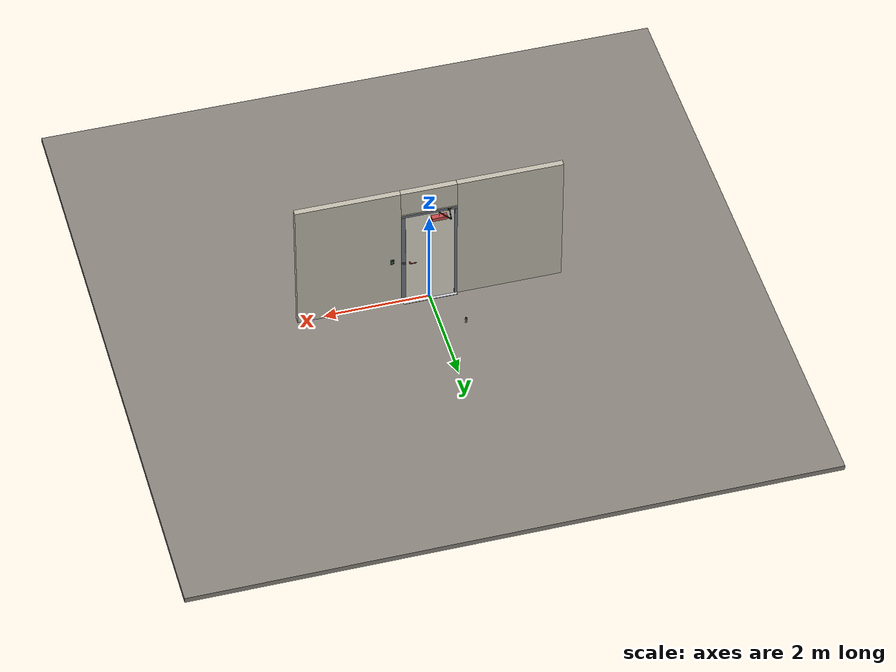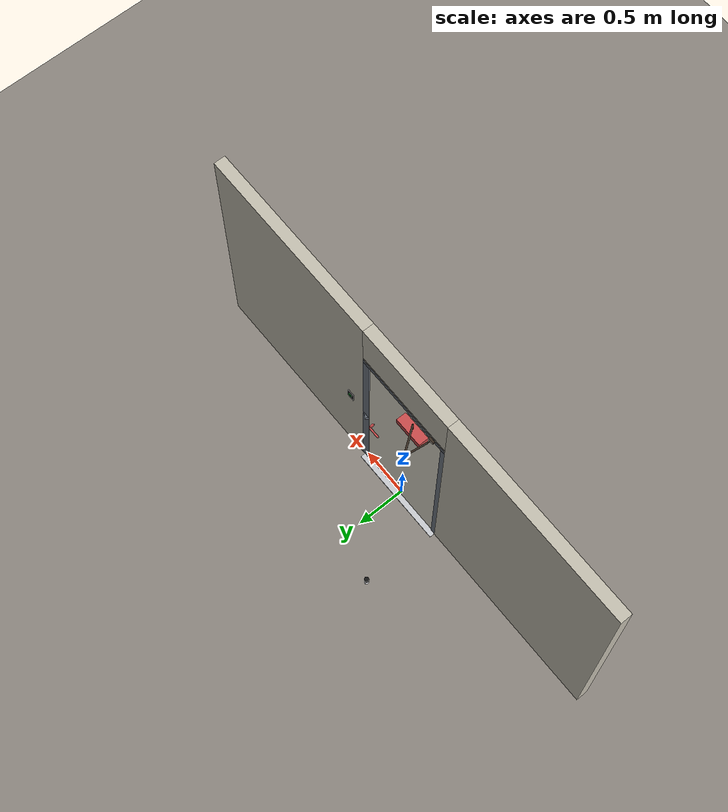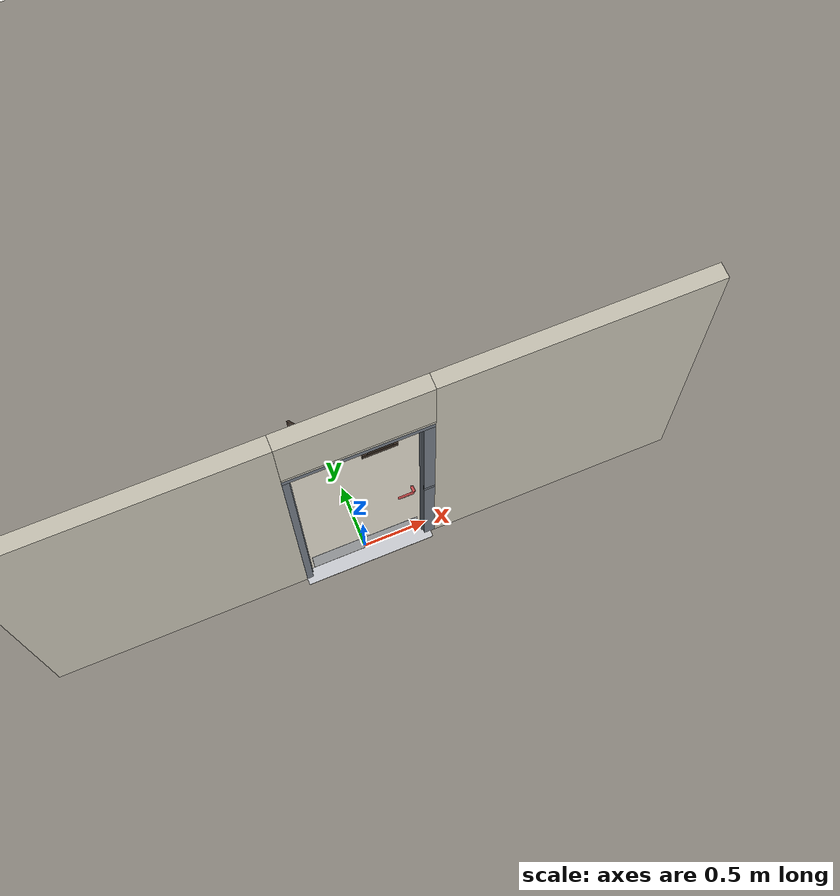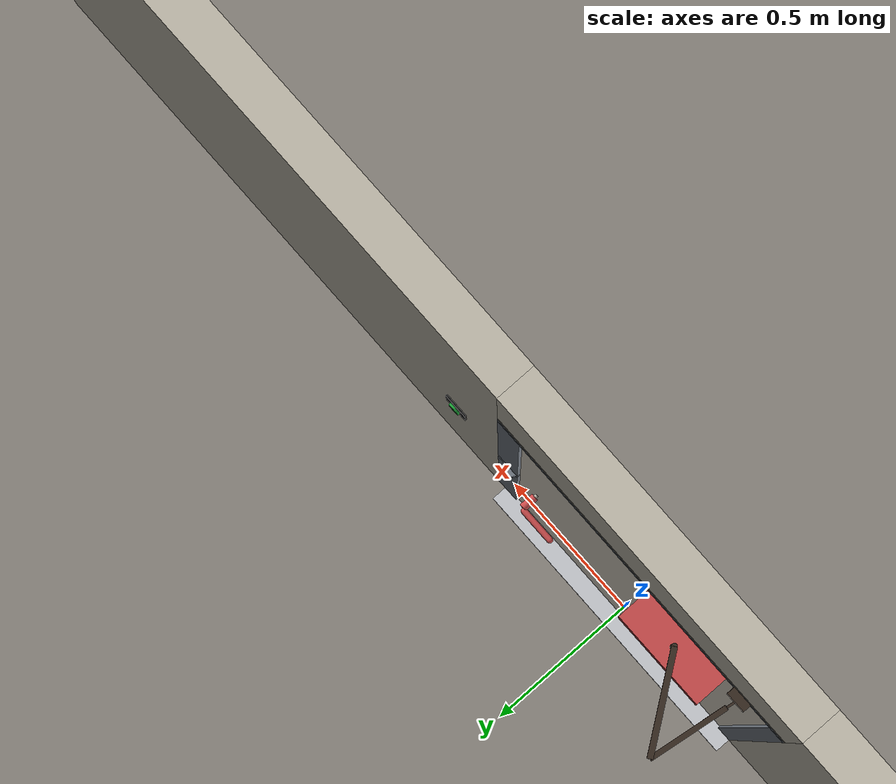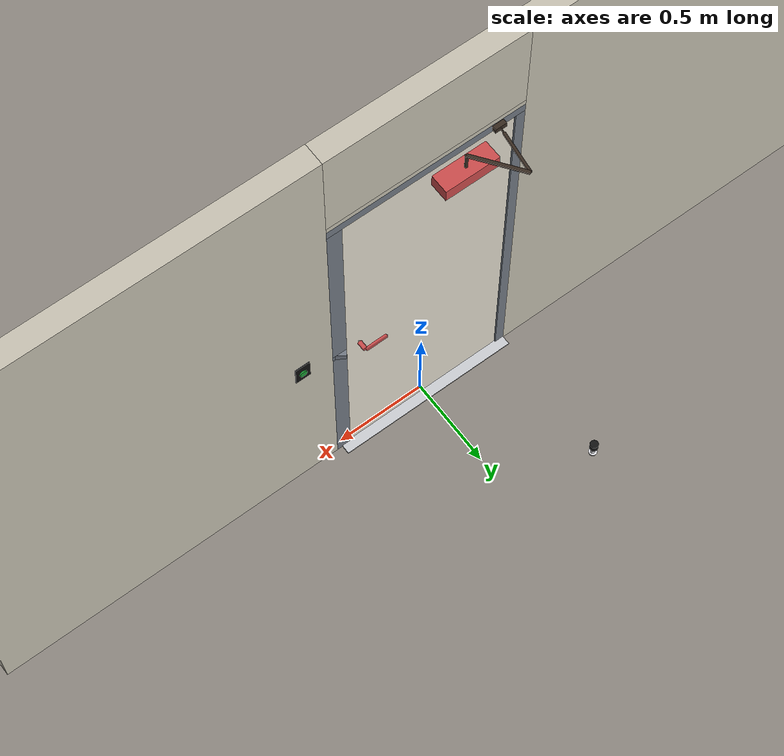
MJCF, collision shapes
<?xml version="1.0" ?>
<mujoco model="db0746_swing_single_full">
  <compiler angle="radian" meshdir="../../hardware" texturedir="../../textures" autolimits="true" inertiafromgeom="false"/>
  <option timestep="0.002" integrator="implicitfast" cone="elliptic" impratio="10" noslip_iterations="3">
    <flag multiccd="enable"/>
  </option>
  <size memory="16M"/>
  <default>
    <geom condim="4" solref="0.005 1" solimp="0.95 0.99 0.001"/>
    <joint solreflimit="0.005 1" solimplimit="0.95 0.99 0.001"/>
    <tendon solreflimit="0.005 1"/>
    <equality solref="0.002 1"/>
  </default>
  <visual>
    <headlight ambient="0.4 0.4 0.4" diffuse="0.7 0.7 0.7" specular="0.2 0.2 0.2"/>
    <quality shadowsize="4096"/>
    <map znear="0.01" zfar="60"/>
  </visual>
  <asset>
    <mesh name="closer_body_fdc4667657" file="closer_body_fdc4667657.obj"/>
    <mesh name="hinge_e22b26c0c1" file="hinge_e22b26c0c1.obj"/>
    <mesh name="hinge_jamb_e1d088f8dc" file="hinge_jamb_e1d088f8dc.obj"/>
    <mesh name="lever_9f02b544cf" file="lever_9f02b544cf.obj"/>
    <material name="mat_floor" rgba="0.55 0.53 0.5 1" specular="0.2" shininess="0.15" reflectance="0"/>
    <material name="mat_wall" rgba="0.78 0.76 0.7 1" specular="0.2" shininess="0.1" reflectance="0"/>
    <material name="mat_leaf" rgba="0.9 0.88 0.82 1" specular="0.23" shininess="0.49" reflectance="0.02"/>
    <material name="mat_hinge" rgba="0.65 0.66 0.68 1" specular="0.74" shininess="0.5" reflectance="0.36"/>
    <material name="mat_op_nickel_satin" rgba="0.72 0.7 0.66 1" specular="0.8" shininess="0.65" reflectance="0.4"/>
    <material name="mat_trim" rgba="0.85 0.66 0.3 1" specular="0.8" shininess="0.75" reflectance="0.4"/>
    <material name="mat_bolt" rgba="0.85 0.66 0.3 1" specular="0.8" shininess="0.75" reflectance="0.4"/>
    <material name="mat_maglock" rgba="0.22 0.17 0.13 1" specular="0.8" shininess="0.6" reflectance="0.4"/>
    <material name="mat_frame" rgba="0.45 0.48 0.52 1" specular="0.32" shininess="0.6" reflectance="0.08"/>
    <material name="mat_seal" rgba="0.1 0.1 0.1 1" specular="0.2" shininess="0.1" reflectance="0"/>
    <material name="mat_threshold" rgba="0.8 0.81 0.83 1" specular="0.8" shininess="0.6" reflectance="0.4"/>
    <material name="mat_closer" rgba="0.22 0.17 0.13 1" specular="0.8" shininess="0.6" reflectance="0.4"/>
    <material name="mat_kick" rgba="0.75 0.76 0.77 1" specular="0.8" shininess="0.65" reflectance="0.4"/>
    <material name="mat_wallreader" rgba="0.05 0.05 0.05 1" specular="0.38" shininess="0.3" reflectance="0.12"/>
    <material name="mat_rex" rgba="0.1 0.6 0.2 1" specular="0.2" shininess="0.6" reflectance="0"/>
    <material name="mat_bumper_stop" rgba="0.08 0.08 0.08 1" specular="0.2" shininess="0.1" reflectance="0"/>
    <material name="mat_stop_base" rgba="0.9 0.9 0.92 1" specular="0.8" shininess="0.9" reflectance="0.4"/>
    <texture name="skybox" type="skybox" builtin="gradient" rgb1="0.6 0.7 0.85" rgb2="0.9 0.92 0.95" width="256" height="256"/>
  </asset>
  <worldbody>
    <light name="sun" pos="1.5 -2.5 4" dir="-0.3 0.5 -0.8" directional="true" diffuse="0.8 0.8 0.8" specular="0.3 0.3 0.3" castshadow="true"/>
    <light name="fill" pos="-1.5 2.5 3" dir="0.3 -0.5 -0.7" directional="true" diffuse="0.35 0.35 0.4" castshadow="false"/>
    <camera name="robot_view" pos="0 -2.666313 1.812087" xyaxes="1 0 0 0 0.26963 0.962964" fovy="52"/>
    <camera name="far_view" pos="0 2.609312 1.812087" xyaxes="-1 0 0 0 -0.26963 0.962964" fovy="52"/>
    <camera name="iso" pos="2.004737 -2.244263 2.234138" xyaxes="0.741536 0.670913 0 -0.242917 0.268487 0.932151" fovy="46"/>
    <camera name="detail_handle" pos="0.4665 -0.877 1.296" xyaxes="0.97561 0.219512 0 -0.070934 0.315262 0.94635" fovy="38"/>
    <geom name="floor" type="box" size="6 6 0.05" pos="0 0 -0.05" material="mat_floor" group="0" contype="1" conaffinity="1" friction="0.8 0.005 0.0001" density="2400"/>
    <geom name="wall_left" type="box" size="0.99475 0.0575 1.3735" pos="-1.50525 -0.0285 1.3735" material="mat_wall" group="0" contype="1" conaffinity="1" friction="0.6 0.005 0.0001" density="800"/>
    <geom name="wall_right" type="box" size="0.97975 0.0575 1.3735" pos="1.52025 -0.0285 1.3735" material="mat_wall" group="0" contype="1" conaffinity="1" friction="0.6 0.005 0.0001" density="800"/>
    <geom name="wall_header" type="box" size="0.5255 0.0575 0.26" pos="0.015 -0.0285 2.487" material="mat_wall" group="0" contype="1" conaffinity="1" friction="0.6 0.005 0.0001" density="800"/>
    <geom name="hinge_0_jamb" type="mesh" mesh="hinge_jamb_e1d088f8dc" pos="-0.4575 0.029 0.259" quat="0 1 0 0" material="mat_hinge" group="1" contype="0" conaffinity="0" density="7850"/>
    <geom name="hinge_1_jamb" type="mesh" mesh="hinge_jamb_e1d088f8dc" pos="-0.4575 0.029 0.827" quat="0 1 0 0" material="mat_hinge" group="1" contype="0" conaffinity="0" density="7850"/>
    <geom name="hinge_2_jamb" type="mesh" mesh="hinge_jamb_e1d088f8dc" pos="-0.4575 0.029 1.395" quat="0 1 0 0" material="mat_hinge" group="1" contype="0" conaffinity="0" density="7850"/>
    <geom name="hinge_3_jamb" type="mesh" mesh="hinge_jamb_e1d088f8dc" pos="-0.4575 0.029 1.963" quat="0 1 0 0" material="mat_hinge" group="1" contype="0" conaffinity="0" density="7850"/>
    <geom name="leaf_maglock_body" type="box" size="0.125 0.025 0.02" pos="0.1565 -0.057 2.082" material="mat_maglock" group="0" contype="1" conaffinity="1" friction="0.6 0.005 0.0001" density="2000"/>
    <geom name="leaf_maglock_bracket" type="box" size="0.09 0.025 0.0225" pos="0.1565 -0.057 2.1245" material="mat_maglock" group="1" contype="0" conaffinity="0" density="7850"/>
    <geom name="jamb_hinge" type="box" size="0.025 0.0575 1.0735" pos="-0.4855 -0.0285 1.0735" material="mat_frame" group="0" contype="1" conaffinity="1" friction="0.6 0.005 0.0001" density="300"/>
    <geom name="strike_1016_wall_n" type="box" size="0.04 0.03825 0.0183" pos="0.5005 -0.04775 1.016" material="mat_frame" group="0" contype="1" conaffinity="1" friction="0.6 0.005 0.0001" density="300"/>
    <geom name="strike_1016_wall_p" type="box" size="0.04 0.008 0.0183" pos="0.5005 0.0175 1.016" material="mat_frame" group="0" contype="1" conaffinity="1" friction="0.6 0.005 0.0001" density="300"/>
    <geom name="strike_1016_ramp" type="box" size="0.04 0.018028 0.0183" pos="0.503782 0.018312 1.016" quat="0.957092 0 0 -0.289784" material="mat_frame" group="0" contype="1" conaffinity="1" friction="0.12 0.005 0.0001" density="300"/>
    <geom name="strike_1016_back" type="box" size="0.0285 0.0095 0.0183" pos="0.512 0 1.016" material="mat_frame" group="0" contype="1" conaffinity="1" friction="0.6 0.005 0.0001" density="300"/>
    <geom name="jamb_strike_0" type="box" size="0.04 0.0575 0.49885" pos="0.5005 -0.0285 0.49885" material="mat_frame" group="0" contype="1" conaffinity="1" friction="0.6 0.005 0.0001" density="300"/>
    <geom name="jamb_strike_1" type="box" size="0.04 0.0575 0.55635" pos="0.5005 -0.0285 1.59065" material="mat_frame" group="0" contype="1" conaffinity="1" friction="0.6 0.005 0.0001" density="300"/>
    <geom name="jamb_head" type="box" size="0.5255 0.0575 0.025" pos="0.015 -0.0285 2.172" material="mat_frame" group="0" contype="1" conaffinity="1" friction="0.6 0.005 0.0001" density="300"/>
    <geom name="head_stud" type="box" size="0.5255 0.0575 0.015" pos="0.015 -0.0285 2.212" material="mat_wall" group="0" contype="1" conaffinity="1" friction="0.6 0.005 0.0001" density="500"/>
    <geom name="stop_hinge" type="box" size="0.0055 0.016 1.0735" pos="-0.455 -0.0385 1.0735" material="mat_frame" group="0" contype="1" conaffinity="1" friction="0.6 0.005 0.0001" density="300"/>
    <geom name="stop_strike" type="box" size="0.0055 0.016 1.0735" pos="0.455 -0.0385 1.0735" material="mat_frame" group="0" contype="1" conaffinity="1" friction="0.6 0.005 0.0001" density="300"/>
    <geom name="stop_head" type="box" size="0.4605 0.016 0.0055" pos="0 -0.0385 2.1415" material="mat_frame" group="0" contype="1" conaffinity="1" friction="0.6 0.005 0.0001" density="300"/>
    <geom name="seal_hinge" type="box" size="0.004 0.0025 1.0735" pos="-0.4575 -0.0245 1.0735" material="mat_seal" group="1" contype="0" conaffinity="0" density="1100"/>
    <geom name="seal_strike" type="box" size="0.004 0.0025 1.0735" pos="0.4575 -0.0245 1.0735" material="mat_seal" group="1" contype="0" conaffinity="0" density="1100"/>
    <geom name="seal_head" type="box" size="0.4405 0.0025 0.008" pos="0 -0.0245 2.135" material="mat_seal" group="1" contype="0" conaffinity="0" density="1100"/>
    <geom name="threshold" type="box" size="0.5105 0.1075 0.004" pos="0 -0.0285 0.004" material="mat_threshold" group="0" contype="1" conaffinity="1" friction="0.6 0.005 0.0001" density="2700"/>
    <geom name="closer_bracket" type="box" size="0.03 0.012 0.014" pos="-0.3605 0.041 2.177" material="mat_closer" group="1" contype="0" conaffinity="0" density="2700"/>
    <geom name="rex_plate" type="box" size="0.04 0.003 0.06" pos="0.7105 0.032 1.1" material="mat_wallreader" group="1" contype="0" conaffinity="0" density="1000"/>
    <geom name="door_stop_base" type="cylinder" size="0.022 0.003" pos="-0.4735 0.8059 0.003" material="mat_stop_base" group="0" contype="1" conaffinity="1" friction="0.6 0.005 0.0001" density="7850"/>
    <geom name="door_stop_post" type="cylinder" size="0.012 0.0245" pos="-0.4735 0.8059 0.0305" material="mat_stop_base" group="0" contype="1" conaffinity="1" friction="0.6 0.005 0.0001" density="7850"/>
    <geom name="door_stop_bumper" type="cylinder" size="0.022 0.02" pos="-0.4735 0.8059 0.075" material="mat_bumper_stop" group="0" contype="1" conaffinity="1" friction="0.6 0.005 0.0001" density="1100"/>
    <site name="approach_point" pos="0 -1.5 0" quat="1 0 0 0" size="0.05" rgba="0.2 0.9 0.2 0.5" group="4"/>
    <site name="goal_point" pos="0 1.5 0" quat="1 0 0 0" size="0.05" rgba="0.2 0.9 0.2 0.5" group="4"/>
    <site name="door_plane_center" pos="0 0 1.0735" quat="1 0 0 0" size="0.02" rgba="0.2 0.9 0.2 0.5" group="4"/>
    <body name="rex_button" pos="0.7105 0.035 1.1">
      <inertial pos="0 0.004 0" mass="0.010053" quat="0 0 0.707107 -0.707107" diaginertia="0.000001059 0.000001059 0.000002011"/>
      <joint name="rex_button_slide" type="slide" axis="0 -1 0" limited="true" range="0 0.004" damping="1" stiffness="1500" springref="-0.004" armature="0.1"/>
      <geom name="rex_button_geom" type="cylinder" size="0.02 0.004" pos="0 0.004 0" quat="0.707107 -0.707107 0 0" material="mat_rex" group="0" contype="1" conaffinity="1" friction="0.6 0.005 0.0001" density="1000"/>
    </body>
    <body name="leaf" pos="-0.4605 0 0">
      <inertial pos="0.419212 0.015113 1.264592" mass="56.777762" quat="-0.472444 0.497163 0.515488 0.513709" diaginertia="3.430126116 28.445618183 31.777825012"/>
      <joint name="leaf_hinge" type="hinge" axis="0 0 1" pos="0.003 0.029 0" limited="true" range="0 1.570796" solreflimit="0.02 1" damping="12.268966" frictionloss="2.017573" stiffness="11.223607" springref="-1.988666" armature="0.02"/>
      <geom name="leaf_slab" type="box" size="0.457 0.022 1.067" pos="0.46 0 1.076" material="mat_leaf" group="0" contype="1" conaffinity="1" friction="0.4 0.005 0.0001" density="1"/>
      <geom name="hinge_0" type="mesh" mesh="hinge_e22b26c0c1" pos="0.003 0.029 0.259" quat="0 1 0 0" material="mat_hinge" group="1" contype="0" conaffinity="0" density="7850"/>
      <geom name="hinge_1" type="mesh" mesh="hinge_e22b26c0c1" pos="0.003 0.029 0.827" quat="0 1 0 0" material="mat_hinge" group="1" contype="0" conaffinity="0" density="7850"/>
      <geom name="hinge_2" type="mesh" mesh="hinge_e22b26c0c1" pos="0.003 0.029 1.395" quat="0 1 0 0" material="mat_hinge" group="1" contype="0" conaffinity="0" density="7850"/>
      <geom name="hinge_3" type="mesh" mesh="hinge_e22b26c0c1" pos="0.003 0.029 1.963" quat="0 1 0 0" material="mat_hinge" group="1" contype="0" conaffinity="0" density="7850"/>
      <geom name="leaf_latch_bolt_faceplate" type="box" size="0.0006 0.014 0.0283" pos="0.9164 0 1.016" material="mat_bolt" group="1" contype="0" conaffinity="0" density="8500"/>
      <geom name="leaf_maglock_armature" type="box" size="0.09 0.005 0.02" pos="0.617 -0.027 2.082" material="mat_maglock" group="1" contype="0" conaffinity="0" density="7800"/>
      <geom name="closer_body" type="mesh" mesh="closer_body_fdc4667657" pos="0.3 0.022 2.054" quat="-0.707107 0.707107 0 0" material="mat_closer" group="1" contype="0" conaffinity="0" density="2000"/>
      <geom name="closer_body_col" type="box" size="0.145 0.05 0.035" pos="0.3 0.072 2.054" material="mat_closer" group="3" contype="1" conaffinity="1" rgba="0.8 0.3 0.3 0.25" friction="0.6 0.005 0.0001" density="2000"/>
      <geom name="closer_pinion_shaft" type="cylinder" size="0.008 0.0615" pos="0.3 0.072 2.1155" material="mat_closer" group="1" contype="0" conaffinity="0" density="2700"/>
      <geom name="kick_plate_n" type="box" size="0.427 0.0008 0.125" pos="0.46 -0.0228 0.144" material="mat_kick" group="2" contype="0" conaffinity="0" density="7900"/>
      <site name="leaf_edge_mid" pos="0.917 0 1.067" quat="1 0 0 0" size="0.02" rgba="0.2 0.9 0.2 0.5" group="4"/>
      <body name="leaf_handle" pos="0.847 0 1.016">
        <inertial pos="-0.028544 0 0" mass="0.978187" quat="0 0.707107 0.707107 0" diaginertia="0.001772047 0.003604455 0.005198299"/>
        <joint name="leaf_handle_hinge" type="hinge" axis="0 -1 0" limited="true" range="0 0.96" damping="0.245624" frictionloss="0.048" stiffness="1.2" springref="-0.458333" armature="0.01"/>
        <geom name="leaf_handle_spindle" type="cylinder" size="0.006 0.03" pos="0 0 0" quat="0.707107 -0.707107 0 0" material="mat_op_nickel_satin" group="1" contype="0" conaffinity="0" density="7850"/>
        <geom name="leaf_handle_lever_n" type="mesh" mesh="lever_9f02b544cf" pos="0 -0.022 0" quat="0.707107 0.707107 0 0" material="mat_op_nickel_satin" group="1" contype="0" conaffinity="0" density="3000"/>
        <geom name="leaf_handle_lever_col_n" type="capsule" size="0.0095 0.053" pos="-0.0625 -0.077 0" quat="0.707107 0 -0.707107 0" material="mat_op_nickel_satin" group="3" contype="1" conaffinity="1" rgba="0.8 0.3 0.3 0.25" friction="0.7 0.01 0.0001" density="3000"/>
        <geom name="leaf_handle_hub_col_n" type="cylinder" size="0.012 0.022" pos="0 -0.052 0" quat="0.707107 -0.707107 0 0" material="mat_op_nickel_satin" group="3" contype="1" conaffinity="1" rgba="0.8 0.3 0.3 0.25" friction="0.6 0.005 0.0001" density="3000"/>
        <geom name="leaf_handle_lever_p" type="mesh" mesh="lever_9f02b544cf" pos="0 0.022 0" quat="-0.707107 0.707107 0 0" material="mat_op_nickel_satin" group="1" contype="0" conaffinity="0" density="3000"/>
        <geom name="leaf_handle_lever_col_p" type="capsule" size="0.0095 0.053" pos="-0.0625 0.077 0" quat="0.707107 0 -0.707107 0" material="mat_op_nickel_satin" group="3" contype="1" conaffinity="1" rgba="0.8 0.3 0.3 0.25" friction="0.7 0.01 0.0001" density="3000"/>
        <geom name="leaf_handle_hub_col_p" type="cylinder" size="0.012 0.022" pos="0 0.052 0" quat="0.707107 -0.707107 0 0" material="mat_op_nickel_satin" group="3" contype="1" conaffinity="1" rgba="0.8 0.3 0.3 0.25" friction="0.6 0.005 0.0001" density="3000"/>
        <site name="leaf_handle_grip_n" pos="-0.1 -0.077 0" quat="1 0 0 0" size="0.012" rgba="0.2 0.9 0.2 0.5" group="4"/>
        <site name="leaf_handle_grip_p" pos="-0.1 0.077 0" quat="1 0 0 0" size="0.012" rgba="0.2 0.9 0.2 0.5" group="4"/>
      </body>
      <body name="leaf_latch_bolt" pos="0.917 0 1.016">
        <inertial pos="-0.0055 0 0" mass="0.074627" quat="0.92388 -0.382683 0 0" diaginertia="0.000002271 0.000013255 0.000013255"/>
        <joint name="leaf_latch_bolt_slide" type="slide" axis="-1 0 0" limited="true" range="0 0.019" damping="2" frictionloss="0.3" stiffness="600" springref="-0.01" armature="0.1"/>
        <geom name="leaf_latch_bolt_capsule" type="capsule" size="0.008 0.0165" pos="-0.0055 0 0" quat="0.707107 0 0.707107 0" material="mat_bolt" group="0" contype="1" conaffinity="1" friction="0.2 0.005 0.0001" density="8500"/>
      </body>
      <body name="closer_arm_main" pos="0.3 0.072 2.177" quat="0.454107 0 0 0.890947">
        <inertial pos="0.14 0 0" mass="0.12096" quat="1 0 0 0" diaginertia="0.000003588 0.00079128 0.000792852"/>
        <joint name="closer_pinion" type="hinge" axis="0 0 1" limited="false" damping="0.01" armature="0.002"/>
        <geom name="closer_arm_main_geom" type="box" size="0.14 0.008 0.005" pos="0.14 0 0" material="mat_closer" group="1" contype="0" conaffinity="0" density="2700"/>
        <body name="closer_arm_fore" pos="0.28 0 0" quat="-0.373215 0 0 -0.927745">
          <inertial pos="0.128088 0 0" mass="0.076531" quat="1 0 0 0" diaginertia="0.000001771 0.000437665 0.000438201"/>
          <joint name="closer_elbow" type="hinge" axis="0 0 1" limited="false" damping="0.01" armature="0.002"/>
          <geom name="closer_arm_fore_geom" type="box" size="0.1125 0.007 0.004" pos="0.1125 0 0" material="mat_closer" group="1" contype="0" conaffinity="0" density="2700"/>
          <geom name="closer_fore_neck" type="box" size="0.0175 0.003 0.003" pos="0.2425 0 0" material="mat_closer" group="1" contype="0" conaffinity="0" density="2700"/>
          <geom name="closer_fore_pivot" type="cylinder" size="0.005 0.012" pos="0.26 0 0" material="mat_closer" group="1" contype="0" conaffinity="0" density="2700"/>
        </body>
      </body>
    </body>
  </worldbody>
  <tendon>
    <fixed name="leaf_latch_bolt_coupling" limited="true" range="0 10">
      <joint joint="leaf_latch_bolt_slide" coef="1"/>
      <joint joint="leaf_handle_hinge" coef="-0.020879"/>
    </fixed>
  </tendon>
  <equality>
    <weld name="leaf_maglock" body1="leaf" body2="world" active="true"/>
    <connect name="closer_arm_connect" body1="closer_arm_fore" body2="world" anchor="0.26 0 0" active="true"/>
  </equality>
  <contact>
    <exclude body1="closer_arm_main" body2="leaf"/>
    <exclude body1="closer_arm_fore" body2="leaf"/>
    <exclude body1="closer_arm_main" body2="closer_arm_fore"/>
  </contact>
  <sensor>
    <jointpos name="leaf_hinge_pos" joint="leaf_hinge"/>
    <jointvel name="leaf_hinge_vel" joint="leaf_hinge"/>
    <jointpos name="leaf_handle_hinge_pos" joint="leaf_handle_hinge"/>
    <jointvel name="leaf_handle_hinge_vel" joint="leaf_handle_hinge"/>
    <jointpos name="leaf_latch_bolt_slide_pos" joint="leaf_latch_bolt_slide"/>
    <jointvel name="leaf_latch_bolt_slide_vel" joint="leaf_latch_bolt_slide"/>
    <jointpos name="rex_button_slide_pos" joint="rex_button_slide"/>
    <jointvel name="rex_button_slide_vel" joint="rex_button_slide"/>
  </sensor>
</mujoco>
